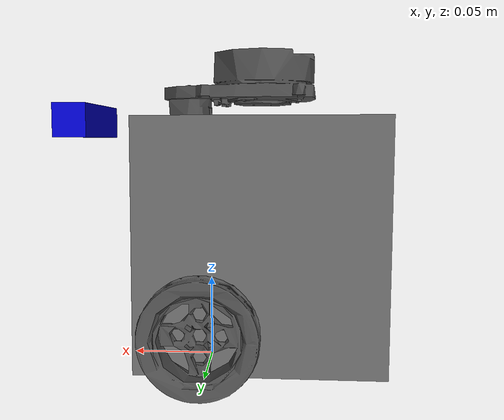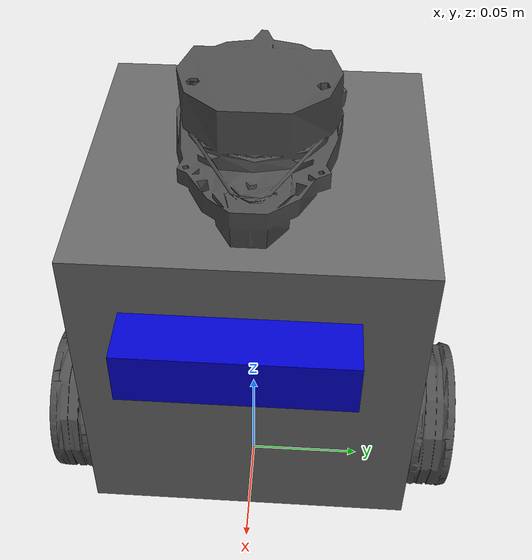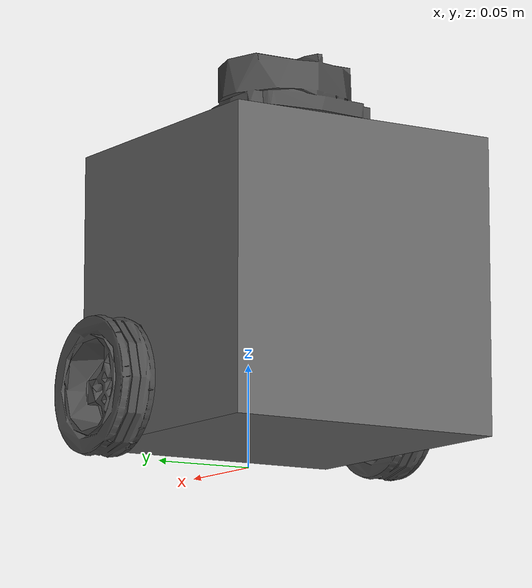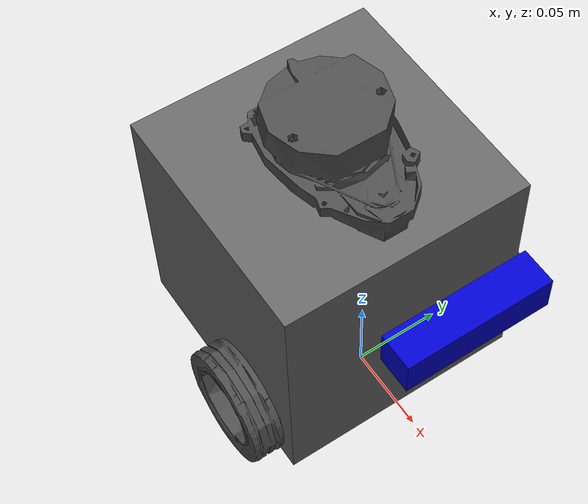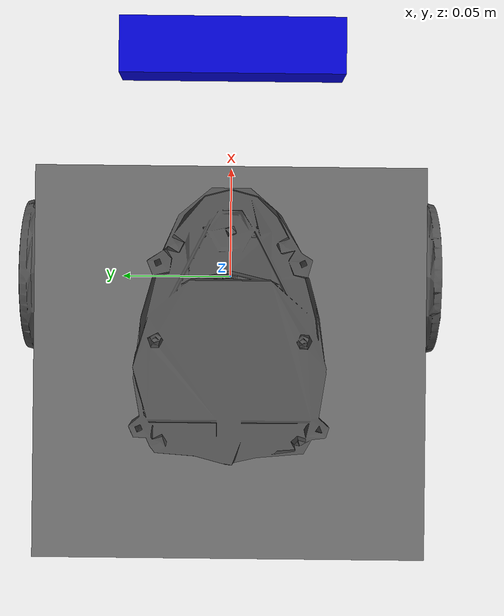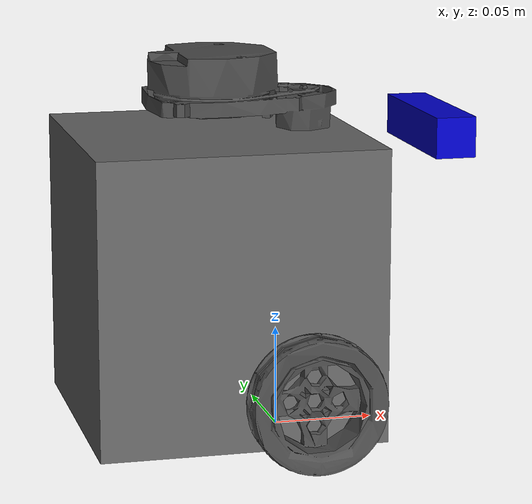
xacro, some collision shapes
<?xml version="1.0"?>
<robot xmlns:xacro="http://ros.org/wiki/xacro" name="turtlebot3_burger_rgbd">
  <!-- Include TurtleBot3 Burger -->
  <xacro:include filename="$(find turtlebot3_description)/urdf/turtlebot3_burger.urdf"/>

  <!-- Include RGB-D Camera -->
  <xacro:include filename="$(find hyper_turtle_description)/urdf/rgbd_camera.xacro"/>

  <!-- Attach RGB-D Camera to base_link -->
  <xacro:rgbd_camera
    parent="base_link"
    name="camera"
    x="0.08" y="0.0" z="0.14"
    roll="0.0" pitch="0.0" yaw="0.0" />
</robot>

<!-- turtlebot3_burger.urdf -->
<!-- |    This document was autogenerated by xacro from /tmp/claude-0/-home-claude/8f5dd28e-fe63-5f45-8f7e-d1a0395364a9/scratchpad/repos/tb3/turtlebot3_description/urdf/turtlebot3_burger.urdf | -->
<!-- |    EDITING THIS FILE BY HAND IS NOT RECOMMENDED                                 | -->
<robot name="turtlebot3_burger">
  <!-- Init colour -->
  <material name="black">
    <color rgba="0.0 0.0 0.0 1.0"/>
  </material>
  <material name="dark">
    <color rgba="0.3 0.3 0.3 1.0"/>
  </material>
  <material name="light_black">
    <color rgba="0.4 0.4 0.4 1.0"/>
  </material>
  <material name="blue">
    <color rgba="0.0 0.0 0.8 1.0"/>
  </material>
  <material name="green">
    <color rgba="0.0 0.8 0.0 1.0"/>
  </material>
  <material name="grey">
    <color rgba="0.5 0.5 0.5 1.0"/>
  </material>
  <material name="orange">
    <color rgba="1.0 0.4235 0.0392 1.0"/>
  </material>
  <material name="brown">
    <color rgba="0.8706 0.8118 0.7647 1.0"/>
  </material>
  <material name="red">
    <color rgba="0.8 0.0 0.0 1.0"/>
  </material>
  <material name="white">
    <color rgba="1.0 1.0 1.0 1.0"/>
  </material>
  <link name="base_footprint"/>
  <joint name="base_joint" type="fixed">
    <parent link="base_footprint"/>
    <child link="base_link"/>
    <origin rpy="0 0 0" xyz="0.0 0.0 0.010"/>
  </joint>
  <link name="base_link">
    <visual>
      <origin rpy="0 0 0" xyz="-0.032 0 0.0"/>
      <geometry>
        <mesh filename="package://turtlebot3_description/meshes/bases/burger_base.stl" scale="0.001 0.001 0.001"/>
      </geometry>
      <material name="light_black"/>
    </visual>
    <collision>
      <origin rpy="0 0 0" xyz="-0.032 0 0.070"/>
      <geometry>
        <box size="0.140 0.140 0.143"/>
      </geometry>
    </collision>
    <inertial>
      <origin rpy="0 0 0" xyz="0 0 0"/>
      <mass value="8.2573504e-01"/>
      <inertia ixx="2.2124416e-03" ixy="-1.2294101e-05" ixz="3.4938785e-05" iyy="2.1193702e-03" iyz="-5.0120904e-06" izz="2.0064271e-03"/>
    </inertial>
  </link>
  <joint name="wheel_left_joint" type="continuous">
    <parent link="base_link"/>
    <child link="wheel_left_link"/>
    <origin rpy="-1.57 0 0" xyz="0.0 0.08 0.023"/>
    <axis xyz="0 0 1"/>
  </joint>
  <link name="wheel_left_link">
    <visual>
      <origin rpy="1.57 0 0" xyz="0 0 0"/>
      <geometry>
        <mesh filename="package://turtlebot3_description/meshes/wheels/left_tire.stl" scale="0.001 0.001 0.001"/>
      </geometry>
      <material name="dark"/>
    </visual>
    <collision>
      <origin rpy="0 0 0" xyz="0 0 0"/>
      <geometry>
        <cylinder length="0.018" radius="0.033"/>
      </geometry>
    </collision>
    <inertial>
      <origin xyz="0 0 0"/>
      <mass value="2.8498940e-02"/>
      <inertia ixx="1.1175580e-05" ixy="-4.2369783e-11" ixz="-5.9381719e-09" iyy="1.1192413e-05" iyz="-1.4400107e-11" izz="2.0712558e-05"/>
    </inertial>
  </link>
  <joint name="wheel_right_joint" type="continuous">
    <parent link="base_link"/>
    <child link="wheel_right_link"/>
    <origin rpy="-1.57 0 0" xyz="0.0 -0.080 0.023"/>
    <axis xyz="0 0 1"/>
  </joint>
  <link name="wheel_right_link">
    <visual>
      <origin rpy="1.57 0 0" xyz="0 0 0"/>
      <geometry>
        <mesh filename="package://turtlebot3_description/meshes/wheels/right_tire.stl" scale="0.001 0.001 0.001"/>
      </geometry>
      <material name="dark"/>
    </visual>
    <collision>
      <origin rpy="0 0 0" xyz="0 0 0"/>
      <geometry>
        <cylinder length="0.018" radius="0.033"/>
      </geometry>
    </collision>
    <inertial>
      <origin xyz="0 0 0"/>
      <mass value="2.8498940e-02"/>
      <inertia ixx="1.1175580e-05" ixy="-4.2369783e-11" ixz="-5.9381719e-09" iyy="1.1192413e-05" iyz="-1.4400107e-11" izz="2.0712558e-05"/>
    </inertial>
  </link>
  <joint name="caster_back_joint" type="fixed">
    <parent link="base_link"/>
    <child link="caster_back_link"/>
    <origin rpy="-1.57 0 0" xyz="-0.081 0 -0.004"/>
  </joint>
  <link name="caster_back_link">
    <collision>
      <origin rpy="0 0 0" xyz="0 0.001 0"/>
      <geometry>
        <box size="0.030 0.009 0.020"/>
      </geometry>
    </collision>
    <inertial>
      <origin xyz="0 0 0"/>
      <mass value="0.005"/>
      <inertia ixx="0.001" ixy="0.0" ixz="0.0" iyy="0.001" iyz="0.0" izz="0.001"/>
    </inertial>
  </link>
  <joint name="imu_joint" type="fixed">
    <parent link="base_link"/>
    <child link="imu_link"/>
    <origin rpy="0 0 0" xyz="-0.032 0 0.068"/>
  </joint>
  <link name="imu_link"/>
  <joint name="scan_joint" type="fixed">
    <parent link="base_link"/>
    <child link="base_scan"/>
    <origin rpy="0 0 0" xyz="-0.032 0 0.172"/>
  </joint>
  <link name="base_scan">
    <visual>
      <origin rpy="0 0 0" xyz="0 0 0.0"/>
      <geometry>
        <mesh filename="package://turtlebot3_description/meshes/sensors/lds.stl" scale="0.001 0.001 0.001"/>
      </geometry>
      <material name="dark"/>
    </visual>
    <collision>
      <origin rpy="0 0 0" xyz="0.015 0 -0.0065"/>
      <geometry>
        <cylinder length="0.0315" radius="0.055"/>
      </geometry>
    </collision>
    <inertial>
      <mass value="0.114"/>
      <origin xyz="0 0 0"/>
      <inertia ixx="0.001" ixy="0.0" ixz="0.0" iyy="0.001" iyz="0.0" izz="0.001"/>
    </inertial>
  </link>
</robot>

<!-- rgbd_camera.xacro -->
<robot xmlns:xacro="http://ros.org/wiki/xacro">

  <xacro:macro name="rgbd_camera" params="parent name x y z roll pitch yaw">

    <!-- Camera joint -->
    <joint name="${name}_joint" type="fixed">
      <parent link="${parent}"/>
      <child link="${name}_link"/>
      <origin xyz="${x} ${y} ${z}" rpy="${roll} ${pitch} ${yaw}"/>
    </joint>

    <!-- Camera link -->
    <link name="${name}_link">
      <visual>
        <origin xyz="0 0 0" rpy="0 0 0"/>
        <geometry>
          <box size="0.02 0.08 0.02"/>
        </geometry>
        <material name="blue">
          <color rgba="0 0 0.8 1"/>
        </material>
      </visual>
      <collision>
        <origin xyz="0 0 0" rpy="0 0 0"/>
        <geometry>
          <box size="0.02 0.08 0.02"/>
        </geometry>
      </collision>
      <inertial>
        <mass value="0.1"/>
        <origin xyz="0 0 0" rpy="0 0 0"/>
        <inertia ixx="0.0001" ixy="0" ixz="0" iyy="0.0001" iyz="0" izz="0.0001"/>
      </inertial>
    </link>

    <!-- Optical joints and frames -->
    <joint name="${name}_color_optical_joint" type="fixed">
      <parent link="${name}_link"/>
      <child link="${name}_color_optical_frame"/>
      <origin xyz="0 0 0" rpy="${-pi/2} 0 ${-pi/2}"/>
    </joint>
    <link name="${name}_color_optical_frame"/>

    <joint name="${name}_depth_optical_joint" type="fixed">
      <parent link="${name}_link"/>
      <child link="${name}_depth_optical_frame"/>
      <origin xyz="0 0 0" rpy="${-pi/2} 0 ${-pi/2}"/>
    </joint>
    <link name="${name}_depth_optical_frame"/>

    <!-- Gazebo sensor plugin for RGB-D -->
    <gazebo reference="${name}_link">
      <sensor name="${name}_sensor" type="rgbd_camera">
        <camera>
          <horizontal_fov>1.047</horizontal_fov>
          <image>
            <width>640</width>
            <height>480</height>
            <format>RGB_INT8</format>
          </image>
          <clip>
            <near>0.1</near>
            <far>10.0</far>
          </clip>
          <optical_frame_id>${name}_color_optical_frame</optical_frame_id>
        </camera>
        <always_on>1</always_on>
        <update_rate>15.0</update_rate>
        <visualize>true</visualize>
        <topic>camera</topic>
        <!-- For Gazebo generic RGBD -->
        <!-- Image topic: /camera/image -->
        <!-- Depth topic: /camera/depth_image -->
        <!-- Points topic: /camera/points -->
        <!-- Camera info topic: /camera/camera_info -->
      </sensor>
    </gazebo>

  </xacro:macro>
</robot>
